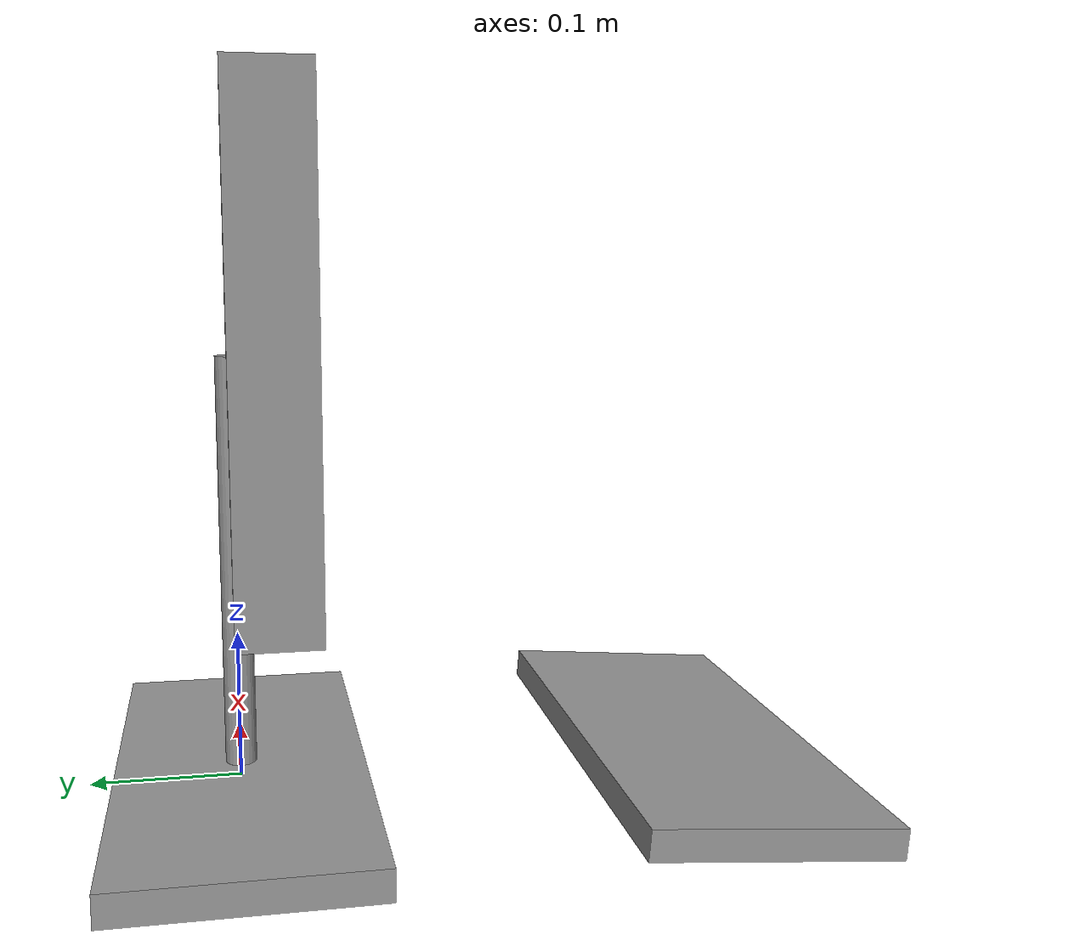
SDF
<?xml version='1.0'?>
<sdf version='1.6'>
  <model name='pc'>
    <link name='link'>
      <inertial>
        <mass>0.00405</mass>
        <inertia>
          <ixx>9.52e-06</ixx>
          <ixy>0</ixy>
          <ixz>0</ixz>
          <iyy>4.245e-05</iyy>
          <iyz>0</iyz>
          <izz>5.168e-05</izz>
        </inertia>
        <pose frame=''>0 0 0 0 -0 0</pose>
      </inertial>
      <self_collide>0</self_collide>
      <enable_wind>0</enable_wind>
      <kinematic>0</kinematic>
      <pose frame=''>0 0 0 0 -0 0</pose>
      <gravity>1</gravity>
      <visual name='visual'>
        <geometry>
          <box>
            <size>0.354039 0.166656 0.020836</size>
          </box>
        </geometry>
        <material>
          <script>
            <name>Gazebo/Grey</name>
            <uri>file://media/materials/scripts/gazebo.material</uri>
          </script>
          <shader type='vertex'>
            <normal_map>__default__</normal_map>
          </shader>
          <ambient>0.3 0.3 0.3 1</ambient>
          <diffuse>0.7 0.7 0.7 1</diffuse>
          <specular>0.01 0.01 0.01 1</specular>
          <emissive>0 0 0 1</emissive>
        </material>
        <pose frame=''>0 0 0 0 -0 0</pose>
        <transparency>0</transparency>
        <cast_shadows>1</cast_shadows>
      </visual>
      <collision name='collision'>
        <laser_retro>0</laser_retro>
        <max_contacts>10</max_contacts>
        <pose frame=''>0 0 0 0 -0 0</pose>
        <geometry>
          <box>
            <size>0.354039 0.166656 0.020836</size>
          </box>
        </geometry>
        <surface>
          <friction>
            <ode>
              <mu>1</mu>
              <mu2>1</mu2>
              <fdir1>0 0 0</fdir1>
              <slip1>0</slip1>
              <slip2>0</slip2>
            </ode>
            <torsional>
              <coefficient>1</coefficient>
              <patch_radius>0</patch_radius>
              <surface_radius>0</surface_radius>
              <use_patch_radius>1</use_patch_radius>
              <ode>
                <slip>0</slip>
              </ode>
            </torsional>
          </friction>
          <bounce>
            <restitution_coefficient>0</restitution_coefficient>
            <threshold>1e+06</threshold>
          </bounce>
          <contact>
            <collide_without_contact>0</collide_without_contact>
            <collide_without_contact_bitmask>1</collide_without_contact_bitmask>
            <collide_bitmask>1</collide_bitmask>
            <ode>
              <soft_cfm>0</soft_cfm>
              <soft_erp>0.2</soft_erp>
              <kp>1e+13</kp>
              <kd>1</kd>
              <max_vel>0.01</max_vel>
              <min_depth>0</min_depth>
            </ode>
            <bullet>
              <split_impulse>1</split_impulse>
              <split_impulse_penetration_threshold>-0.01</split_impulse_penetration_threshold>
              <soft_cfm>0</soft_cfm>
              <soft_erp>0.2</soft_erp>
              <kp>1e+13</kp>
              <kd>1</kd>
            </bullet>
          </contact>
        </surface>
      </collision>
    </link>
    <link name='link_0'>
      <inertial>
        <mass>0.00012043</mass>
        <inertia>
          <ixx>8.05101e-07</ixx>
          <ixy>0</ixy>
          <ixz>0</ixz>
          <iyy>8.05101e-07</iyy>
          <iyz>0</iyz>
          <izz>6.48533e-09</izz>
        </inertia>
        <pose frame=''>0 0 0 0 -0 0</pose>
      </inertial>
      <pose frame=''>3.9e-05 -4.1e-05 0.145366 0.000282 0.000269 7.8e-05</pose>
      <gravity>1</gravity>
      <self_collide>0</self_collide>
      <kinematic>0</kinematic>
      <enable_wind>0</enable_wind>
      <visual name='visual'>
        <pose frame=''>0 0 0 0 -0 0</pose>
        <geometry>
          <cylinder>
            <radius>0.0103778</radius>
            <length>0.282665</length>
          </cylinder>
        </geometry>
        <material>
          <lighting>1</lighting>
          <script>
            <uri>file://media/materials/scripts/gazebo.material</uri>
            <name>Gazebo/Grey</name>
          </script>
          <shader type='vertex'>
            <normal_map>__default__</normal_map>
          </shader>
          <ambient>0.3 0.3 0.3 1</ambient>
          <diffuse>0.7 0.7 0.7 1</diffuse>
          <specular>0.01 0.01 0.01 1</specular>
          <emissive>0 0 0 1</emissive>
        </material>
        <transparency>0</transparency>
        <cast_shadows>1</cast_shadows>
      </visual>
      <collision name='collision'>
        <laser_retro>0</laser_retro>
        <max_contacts>10</max_contacts>
        <pose frame=''>0 0 0 0 -0 0</pose>
        <geometry>
          <cylinder>
            <radius>0.010378</radius>
            <length>0.282665</length>
          </cylinder>
        </geometry>
        <surface>
          <friction>
            <ode>
              <mu>1</mu>
              <mu2>1</mu2>
              <fdir1>0 0 0</fdir1>
              <slip1>0</slip1>
              <slip2>0</slip2>
            </ode>
            <torsional>
              <coefficient>1</coefficient>
              <patch_radius>0</patch_radius>
              <surface_radius>0</surface_radius>
              <use_patch_radius>1</use_patch_radius>
              <ode>
                <slip>0</slip>
              </ode>
            </torsional>
          </friction>
          <bounce>
            <restitution_coefficient>0</restitution_coefficient>
            <threshold>1e+06</threshold>
          </bounce>
          <contact>
            <collide_without_contact>0</collide_without_contact>
            <collide_without_contact_bitmask>1</collide_without_contact_bitmask>
            <collide_bitmask>1</collide_bitmask>
            <ode>
              <soft_cfm>0</soft_cfm>
              <soft_erp>0.2</soft_erp>
              <kp>1e+13</kp>
              <kd>1</kd>
              <max_vel>0.01</max_vel>
              <min_depth>0</min_depth>
            </ode>
            <bullet>
              <split_impulse>1</split_impulse>
              <split_impulse_penetration_threshold>-0.01</split_impulse_penetration_threshold>
              <soft_cfm>0</soft_cfm>
              <soft_erp>0.2</soft_erp>
              <kp>1e+13</kp>
              <kd>1</kd>
            </bullet>
          </contact>
        </surface>
      </collision>
    </link>
    <link name='link_1'>
      <inertial>
        <mass>0.0059181</mass>
        <inertia>
          <ixx>4.272e-05</ixx>
          <ixy>0</ixy>
          <ixz>0</ixz>
          <iyy>0.00014038</iyy>
          <iyz>0</iyz>
          <izz>9.971e-05</izz>
        </inertia>
        <pose frame=''>0 0 0 0 -0 0</pose>
      </inertial>
      <pose frame=''>0 -0.02 0.3 0.000282 0.000269 7.8e-05</pose>
      <gravity>1</gravity>
      <self_collide>0</self_collide>
      <kinematic>0</kinematic>
      <enable_wind>0</enable_wind>
      <visual name='visual'>
        <pose frame=''>0 0 0 0 -0 0</pose>
        <geometry>
          <box>
            <size>0.44733 0.045506 0.290771</size>
          </box>
        </geometry>
        <material>
          <lighting>1</lighting>
          <script>
            <uri>file://media/materials/scripts/gazebo.material</uri>
            <name>Gazebo/Grey</name>
          </script>
          <shader type='vertex'>
            <normal_map>__default__</normal_map>
          </shader>
          <ambient>0.3 0.3 0.3 1</ambient>
          <diffuse>0.7 0.7 0.7 1</diffuse>
          <specular>0.01 0.01 0.01 1</specular>
          <emissive>0 0 0 1</emissive>
        </material>
        <transparency>0</transparency>
        <cast_shadows>1</cast_shadows>
      </visual>
      <collision name='collision'>
        <laser_retro>0</laser_retro>
        <max_contacts>10</max_contacts>
        <pose frame=''>0 0 0 0 -0 0</pose>
        <geometry>
          <box>
            <size>0.44733 0.045506 0.290771</size>
          </box>
        </geometry>
        <surface>
          <friction>
            <ode>
              <mu>1</mu>
              <mu2>1</mu2>
              <fdir1>0 0 0</fdir1>
              <slip1>0</slip1>
              <slip2>0</slip2>
            </ode>
            <torsional>
              <coefficient>1</coefficient>
              <patch_radius>0</patch_radius>
              <surface_radius>0</surface_radius>
              <use_patch_radius>1</use_patch_radius>
              <ode>
                <slip>0</slip>
              </ode>
            </torsional>
          </friction>
          <bounce>
            <restitution_coefficient>0</restitution_coefficient>
            <threshold>1e+06</threshold>
          </bounce>
          <contact>
            <collide_without_contact>0</collide_without_contact>
            <collide_without_contact_bitmask>1</collide_without_contact_bitmask>
            <collide_bitmask>1</collide_bitmask>
            <ode>
              <soft_cfm>0</soft_cfm>
              <soft_erp>0.2</soft_erp>
              <kp>1e+13</kp>
              <kd>1</kd>
              <max_vel>0.01</max_vel>
              <min_depth>0</min_depth>
            </ode>
            <bullet>
              <split_impulse>1</split_impulse>
              <split_impulse_penetration_threshold>-0.01</split_impulse_penetration_threshold>
              <soft_cfm>0</soft_cfm>
              <soft_erp>0.2</soft_erp>
              <kp>1e+13</kp>
              <kd>1</kd>
            </bullet>
          </contact>
        </surface>
      </collision>
    </link>
    <link name='link_clone'>
      <inertial>
        <mass>0.005</mass>
        <inertia>
          <ixx>1.175e-05</ixx>
          <ixy>0</ixy>
          <ixz>0</ixz>
          <iyy>5.241e-05</iyy>
          <iyz>0</iyz>
          <izz>6.38e-05</izz>
        </inertia>
        <pose frame=''>0 0 0 0 -0 0</pose>
      </inertial>
      <self_collide>0</self_collide>
      <enable_wind>0</enable_wind>
      <kinematic>0</kinematic>
      <pose frame=''>0.007234 -0.318484 4.7e-05 0.08305 0 1e-06</pose>
      <gravity>1</gravity>
      <visual name='visual'>
        <geometry>
          <box>
            <size>0.354039 0.166656 0.020836</size>
          </box>
        </geometry>
        <material>
          <script>
            <name>Gazebo/Grey</name>
            <uri>file://media/materials/scripts/gazebo.material</uri>
          </script>
          <shader type='vertex'>
            <normal_map>__default__</normal_map>
          </shader>
          <ambient>0.3 0.3 0.3 1</ambient>
          <diffuse>0.7 0.7 0.7 1</diffuse>
          <specular>0.01 0.01 0.01 1</specular>
          <emissive>0 0 0 1</emissive>
        </material>
        <pose frame=''>0 0 0 0 -0 0</pose>
        <transparency>0</transparency>
        <cast_shadows>1</cast_shadows>
      </visual>
      <collision name='collision'>
        <laser_retro>0</laser_retro>
        <max_contacts>10</max_contacts>
        <pose frame=''>0 0 0 0 -0 0</pose>
        <geometry>
          <box>
            <size>0.354039 0.166656 0.020836</size>
          </box>
        </geometry>
        <surface>
          <friction>
            <ode>
              <mu>1</mu>
              <mu2>1</mu2>
              <fdir1>0 0 0</fdir1>
              <slip1>0</slip1>
              <slip2>0</slip2>
            </ode>
            <torsional>
              <coefficient>1</coefficient>
              <patch_radius>0</patch_radius>
              <surface_radius>0</surface_radius>
              <use_patch_radius>1</use_patch_radius>
              <ode>
                <slip>0</slip>
              </ode>
            </torsional>
          </friction>
          <bounce>
            <restitution_coefficient>0</restitution_coefficient>
            <threshold>1e+06</threshold>
          </bounce>
          <contact>
            <collide_without_contact>0</collide_without_contact>
            <collide_without_contact_bitmask>1</collide_without_contact_bitmask>
            <collide_bitmask>1</collide_bitmask>
            <ode>
              <soft_cfm>0</soft_cfm>
              <soft_erp>0.2</soft_erp>
              <kp>1e+13</kp>
              <kd>1</kd>
              <max_vel>0.01</max_vel>
              <min_depth>0</min_depth>
            </ode>
            <bullet>
              <split_impulse>1</split_impulse>
              <split_impulse_penetration_threshold>-0.01</split_impulse_penetration_threshold>
              <soft_cfm>0</soft_cfm>
              <soft_erp>0.2</soft_erp>
              <kp>1e+13</kp>
              <kd>1</kd>
            </bullet>
          </contact>
        </surface>
      </collision>
    </link>
    <joint name='link_1_JOINT_1' type='fixed'>
      <parent>link_1</parent>
      <child>link_0</child>
      <pose frame=''>0 0 0 0 -0 0</pose>
      <physics>
        <ode>
          <limit>
            <cfm>0</cfm>
            <erp>0.2</erp>
          </limit>
          <suspension>
            <cfm>0</cfm>
            <erp>0.2</erp>
          </suspension>
        </ode>
      </physics>
    </joint>
    <joint name='link_JOINT_0' type='fixed'>
      <parent>link</parent>
      <child>link_0</child>
      <pose frame=''>0 0 0 0 -0 0</pose>
      <physics>
        <ode>
          <limit>
            <cfm>0</cfm>
            <erp>0.2</erp>
          </limit>
          <suspension>
            <cfm>0</cfm>
            <erp>0.2</erp>
          </suspension>
        </ode>
      </physics>
    </joint>
    <static>0</static>
    <allow_auto_disable>1</allow_auto_disable>
  </model>
</sdf>
